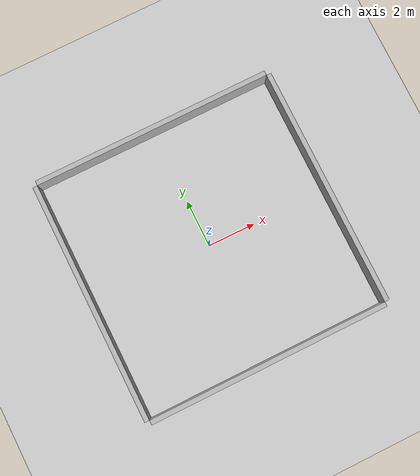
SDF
<?xml version="1.0" ?>
<sdf version="1.6">
  <world name="map100_res0.1">
    <!-- ground plane & lighting -->
    <include><uri>model://ground_plane</uri></include>
    <include><uri>model://sun</uri></include>

    <!-- NORTH wall -->
    <model name="wall_north">
      <static>true</static>
      <!-- X, Y, Z, roll, pitch, yaw -->
      <pose>0 5.1 0.5 0 0 0</pose>
      <link name="link">
        <collision name="col">
          <geometry>
            <!-- length=X=10m, width=Y=0.2m, height=Z=1m -->
            <box><size>10.0 0.2 1.0</size></box>
          </geometry>
        </collision>
        <visual name="vis">
          <geometry><box><size>10.0 0.2 1.0</size></box></geometry>
        </visual>
      </link>
    </model>

    <!-- SOUTH wall -->
    <model name="wall_south">
      <static>true</static>
      <pose>0 -5.1 0.5 0 0 0</pose>
      <link name="link">
        <collision name="col">
          <geometry><box><size>10.0 0.2 1.0</size></box></geometry>
        </collision>
        <visual name="vis">
          <geometry><box><size>10.0 0.2 1.0</size></box></geometry>
        </visual>
      </link>
    </model>

    <!-- EAST wall -->
    <model name="wall_east">
      <static>true</static>
      <pose>5.1 0 0.5 0 0 0</pose>
      <link name="link">
        <collision name="col">
          <geometry><box><size>0.2 10.0 1.0</size></box></geometry>
        </collision>
        <visual name="vis">
          <geometry><box><size>0.2 10.0 1.0</size></box></geometry>
        </visual>
      </link>
    </model>

    <!-- WEST wall -->
    <model name="wall_west">
      <static>true</static>
      <pose>-5.1 0 0.5 0 0 0</pose>
      <link name="link">
        <collision name="col">
          <geometry><box><size>0.2 10.0 1.0</size></box></geometry>
        </collision>
        <visual name="vis">
          <geometry><box><size>0.2 10.0 1.0</size></box></geometry>
        </visual>
      </link>
    </model>

  </world>
</sdf>
